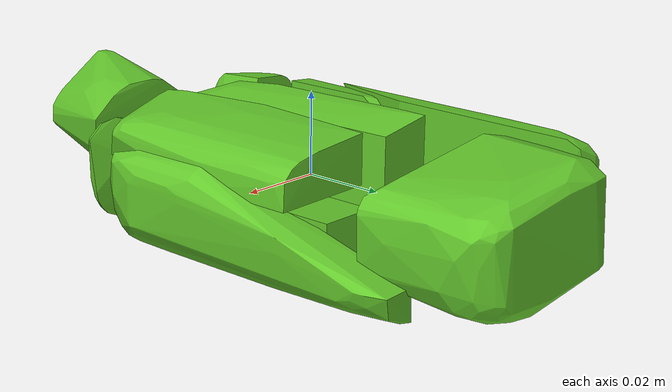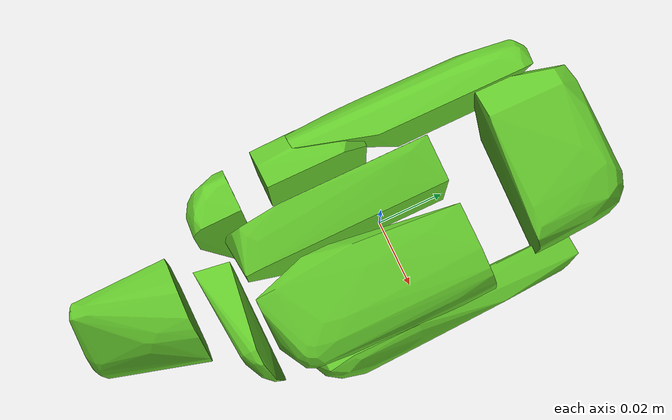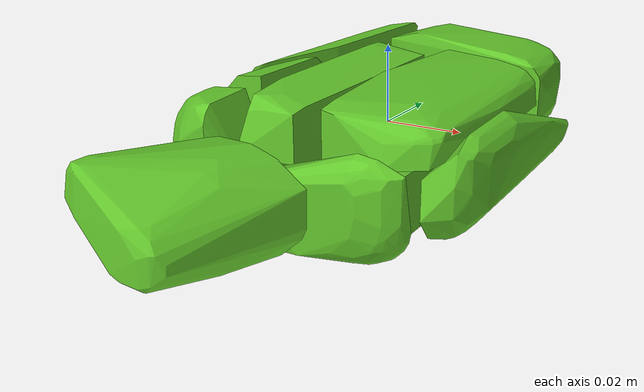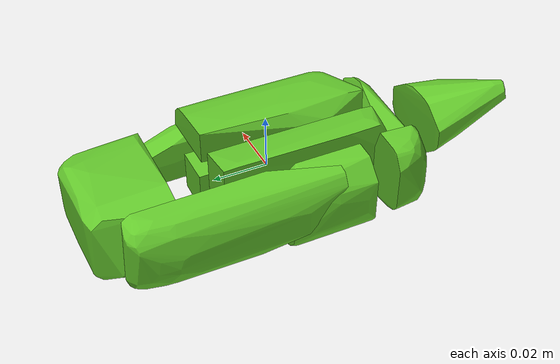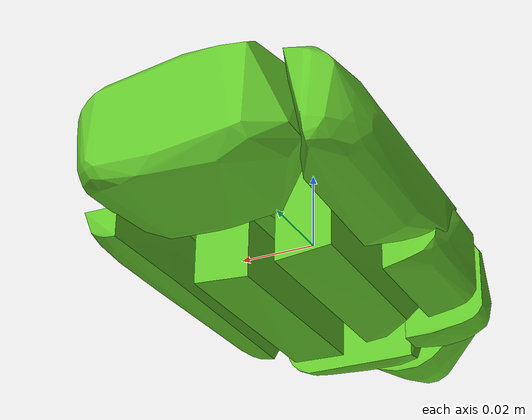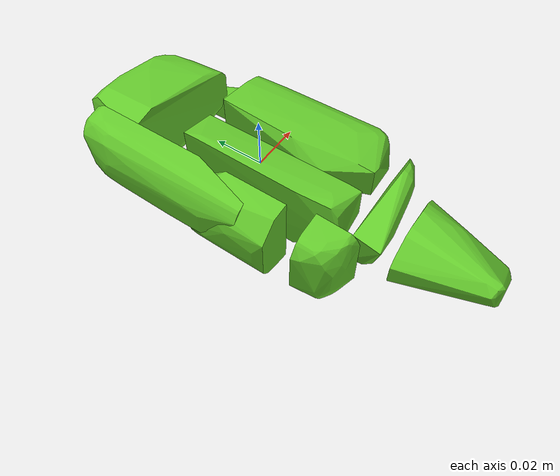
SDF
<?xml version='1.0' encoding='UTF-8'?>
<!-- This SDF was autogenerated by obj_to_drake_sdf.py -->
<sdf version="1.7">
  <model name="lotion">
    <link name="lotion">
      <inertial>
        <pose>0 0 0 0 0 0</pose>
        <mass>0.05</mass>
        <inertia>
          <ixx>9.2425131e-05</ixx>
          <iyy>2.5161171e-05</iyy>
          <izz>0.00010672372</izz>
          <ixy>1.7541074e-07</ixy>
          <ixz>8.9051541e-07</ixz>
          <iyz>5.3957645e-07</iyz>
        </inertia>
      </inertial>
      <visual name="convex_0">
        <pose>0 0 0 0 0 0</pose>
        <geometry>
          <mesh>
            <uri>lotion_convex_0.obj</uri>
          </mesh>
        </geometry>
        <material>
          <diffuse>0.39215686274509803 0.7843137254901961 0.17254901960784313 1</diffuse>
        </material>
      </visual>
      <collision name="convex_0_volume">
        <pose>0 0 0 0 0 0</pose>
        <geometry>
          <mesh>
            <uri>lotion_convex_0.obj</uri>
          </mesh>
        </geometry>
        <drake:proximity_properties xmlns:drake="uri:drake">
          <drake:compliant_hydroelastic/>
          <drake:hydroelastic_modulus> 3.0e7 </drake:hydroelastic_modulus>
          <drake:mesh_resolution_hint> 0.02 </drake:mesh_resolution_hint>
          <drake:hunt_crossley_dissipation>10</drake:hunt_crossley_dissipation>
          <drake:mu_dynamic>0.3</drake:mu_dynamic>
        </drake:proximity_properties>
      </collision>
      <visual name="convex_1">
        <pose>0 0 0 0 0 0</pose>
        <geometry>
          <mesh>
            <uri>lotion_convex_1.obj</uri>
          </mesh>
        </geometry>
        <material>
          <diffuse>0.39215686274509803 0.7843137254901961 0.17254901960784313 1</diffuse>
        </material>
      </visual>
      <collision name="convex_1_volume">
        <pose>0 0 0 0 0 0</pose>
        <geometry>
          <mesh>
            <uri>lotion_convex_1.obj</uri>
          </mesh>
        </geometry>
        <drake:proximity_properties xmlns:drake="uri:drake">
          <drake:compliant_hydroelastic/>
          <drake:hydroelastic_modulus> 3.0e7 </drake:hydroelastic_modulus>
          <drake:mesh_resolution_hint> 0.02 </drake:mesh_resolution_hint>
          <drake:hunt_crossley_dissipation>10</drake:hunt_crossley_dissipation>
          <drake:mu_dynamic>0.3</drake:mu_dynamic>
        </drake:proximity_properties>
      </collision>
      <visual name="convex_2">
        <pose>0 0 0 0 0 0</pose>
        <geometry>
          <mesh>
            <uri>lotion_convex_2.obj</uri>
          </mesh>
        </geometry>
        <material>
          <diffuse>0.39215686274509803 0.7843137254901961 0.17254901960784313 1</diffuse>
        </material>
      </visual>
      <collision name="convex_2_volume">
        <pose>0 0 0 0 0 0</pose>
        <geometry>
          <mesh>
            <uri>lotion_convex_2.obj</uri>
          </mesh>
        </geometry>
        <drake:proximity_properties xmlns:drake="uri:drake">
          <drake:compliant_hydroelastic/>
          <drake:hydroelastic_modulus> 3.0e7 </drake:hydroelastic_modulus>
          <drake:mesh_resolution_hint> 0.02 </drake:mesh_resolution_hint>
          <drake:hunt_crossley_dissipation>10</drake:hunt_crossley_dissipation>
          <drake:mu_dynamic>0.3</drake:mu_dynamic>
        </drake:proximity_properties>
      </collision>
      <visual name="convex_3">
        <pose>0 0 0 0 0 0</pose>
        <geometry>
          <mesh>
            <uri>lotion_convex_3.obj</uri>
          </mesh>
        </geometry>
        <material>
          <diffuse>0.39215686274509803 0.7843137254901961 0.17254901960784313 1</diffuse>
        </material>
      </visual>
      <collision name="convex_3_volume">
        <pose>0 0 0 0 0 0</pose>
        <geometry>
          <mesh>
            <uri>lotion_convex_3.obj</uri>
          </mesh>
        </geometry>
        <drake:proximity_properties xmlns:drake="uri:drake">
          <drake:compliant_hydroelastic/>
          <drake:hydroelastic_modulus> 3.0e7 </drake:hydroelastic_modulus>
          <drake:mesh_resolution_hint> 0.02 </drake:mesh_resolution_hint>
          <drake:hunt_crossley_dissipation>10</drake:hunt_crossley_dissipation>
          <drake:mu_dynamic>0.3</drake:mu_dynamic>
        </drake:proximity_properties>
      </collision>
      <visual name="convex_4">
        <pose>0 0 0 0 0 0</pose>
        <geometry>
          <mesh>
            <uri>lotion_convex_4.obj</uri>
          </mesh>
        </geometry>
        <material>
          <diffuse>0.39215686274509803 0.7843137254901961 0.17254901960784313 1</diffuse>
        </material>
      </visual>
      <collision name="convex_4_volume">
        <pose>0 0 0 0 0 0</pose>
        <geometry>
          <mesh>
            <uri>lotion_convex_4.obj</uri>
          </mesh>
        </geometry>
        <drake:proximity_properties xmlns:drake="uri:drake">
          <drake:compliant_hydroelastic/>
          <drake:hydroelastic_modulus> 3.0e7 </drake:hydroelastic_modulus>
          <drake:mesh_resolution_hint> 0.02 </drake:mesh_resolution_hint>
          <drake:hunt_crossley_dissipation>10</drake:hunt_crossley_dissipation>
          <drake:mu_dynamic>0.3</drake:mu_dynamic>
        </drake:proximity_properties>
      </collision>
      <visual name="convex_5">
        <pose>0 0 0 0 0 0</pose>
        <geometry>
          <mesh>
            <uri>lotion_convex_5.obj</uri>
          </mesh>
        </geometry>
        <material>
          <diffuse>0.39215686274509803 0.7843137254901961 0.17254901960784313 1</diffuse>
        </material>
      </visual>
      <collision name="convex_5_volume">
        <pose>0 0 0 0 0 0</pose>
        <geometry>
          <mesh>
            <uri>lotion_convex_5.obj</uri>
          </mesh>
        </geometry>
        <drake:proximity_properties xmlns:drake="uri:drake">
          <drake:compliant_hydroelastic/>
          <drake:hydroelastic_modulus> 3.0e7 </drake:hydroelastic_modulus>
          <drake:mesh_resolution_hint> 0.02 </drake:mesh_resolution_hint>
          <drake:hunt_crossley_dissipation>10</drake:hunt_crossley_dissipation>
          <drake:mu_dynamic>0.3</drake:mu_dynamic>
        </drake:proximity_properties>
      </collision>
      <visual name="convex_6">
        <pose>0 0 0 0 0 0</pose>
        <geometry>
          <mesh>
            <uri>lotion_convex_6.obj</uri>
          </mesh>
        </geometry>
        <material>
          <diffuse>0.39215686274509803 0.7843137254901961 0.17254901960784313 1</diffuse>
        </material>
      </visual>
      <collision name="convex_6_volume">
        <pose>0 0 0 0 0 0</pose>
        <geometry>
          <mesh>
            <uri>lotion_convex_6.obj</uri>
          </mesh>
        </geometry>
        <drake:proximity_properties xmlns:drake="uri:drake">
          <drake:compliant_hydroelastic/>
          <drake:hydroelastic_modulus> 3.0e7 </drake:hydroelastic_modulus>
          <drake:mesh_resolution_hint> 0.02 </drake:mesh_resolution_hint>
          <drake:hunt_crossley_dissipation>10</drake:hunt_crossley_dissipation>
          <drake:mu_dynamic>0.3</drake:mu_dynamic>
        </drake:proximity_properties>
      </collision>
      <visual name="convex_7">
        <pose>0 0 0 0 0 0</pose>
        <geometry>
          <mesh>
            <uri>lotion_convex_7.obj</uri>
          </mesh>
        </geometry>
        <material>
          <diffuse>0.39215686274509803 0.7843137254901961 0.17254901960784313 1</diffuse>
        </material>
      </visual>
      <collision name="convex_7_volume">
        <pose>0 0 0 0 0 0</pose>
        <geometry>
          <mesh>
            <uri>lotion_convex_7.obj</uri>
          </mesh>
        </geometry>
        <drake:proximity_properties xmlns:drake="uri:drake">
          <drake:compliant_hydroelastic/>
          <drake:hydroelastic_modulus> 3.0e7 </drake:hydroelastic_modulus>
          <drake:mesh_resolution_hint> 0.02 </drake:mesh_resolution_hint>
          <drake:hunt_crossley_dissipation>10</drake:hunt_crossley_dissipation>
          <drake:mu_dynamic>0.3</drake:mu_dynamic>
        </drake:proximity_properties>
      </collision>
      <visual name="convex_8">
        <pose>0 0 0 0 0 0</pose>
        <geometry>
          <mesh>
            <uri>lotion_convex_8.obj</uri>
          </mesh>
        </geometry>
        <material>
          <diffuse>0.39215686274509803 0.7843137254901961 0.17254901960784313 1</diffuse>
        </material>
      </visual>
      <collision name="convex_8_volume">
        <pose>0 0 0 0 0 0</pose>
        <geometry>
          <mesh>
            <uri>lotion_convex_8.obj</uri>
          </mesh>
        </geometry>
        <drake:proximity_properties xmlns:drake="uri:drake">
          <drake:compliant_hydroelastic/>
          <drake:hydroelastic_modulus> 3.0e7 </drake:hydroelastic_modulus>
          <drake:mesh_resolution_hint> 0.02 </drake:mesh_resolution_hint>
          <drake:hunt_crossley_dissipation>10</drake:hunt_crossley_dissipation>
          <drake:mu_dynamic>0.3</drake:mu_dynamic>
        </drake:proximity_properties>
      </collision>
      <visual name="convex_9">
        <pose>0 0 0 0 0 0</pose>
        <geometry>
          <mesh>
            <uri>lotion_convex_9.obj</uri>
          </mesh>
        </geometry>
        <material>
          <diffuse>0.39215686274509803 0.7843137254901961 0.17254901960784313 1</diffuse>
        </material>
      </visual>
      <collision name="convex_9_volume">
        <pose>0 0 0 0 0 0</pose>
        <geometry>
          <mesh>
            <uri>lotion_convex_9.obj</uri>
          </mesh>
        </geometry>
        <drake:proximity_properties xmlns:drake="uri:drake">
          <drake:compliant_hydroelastic/>
          <drake:hydroelastic_modulus> 3.0e7 </drake:hydroelastic_modulus>
          <drake:mesh_resolution_hint> 0.02 </drake:mesh_resolution_hint>
          <drake:hunt_crossley_dissipation>10</drake:hunt_crossley_dissipation>
          <drake:mu_dynamic>0.3</drake:mu_dynamic>
        </drake:proximity_properties>
      </collision>
    </link>
  </model>
</sdf>
